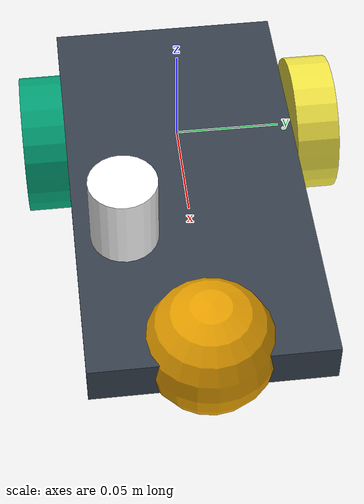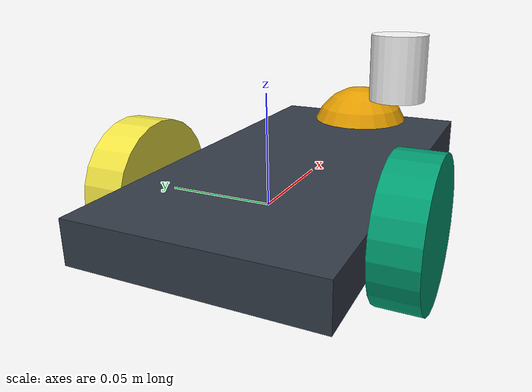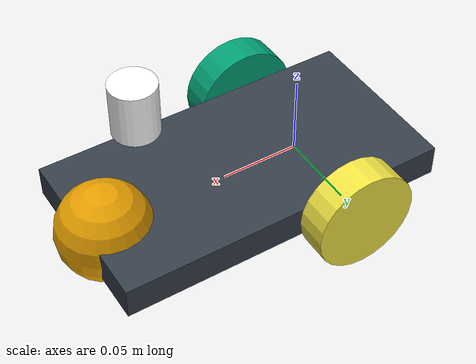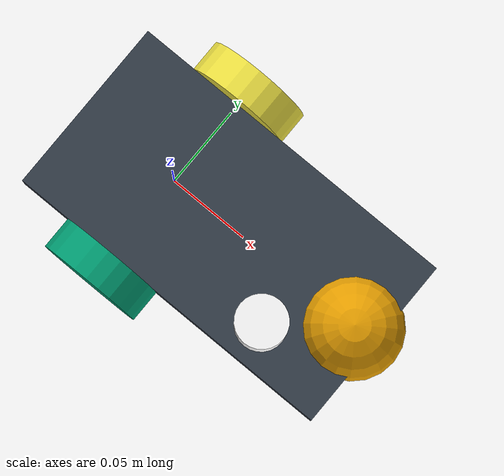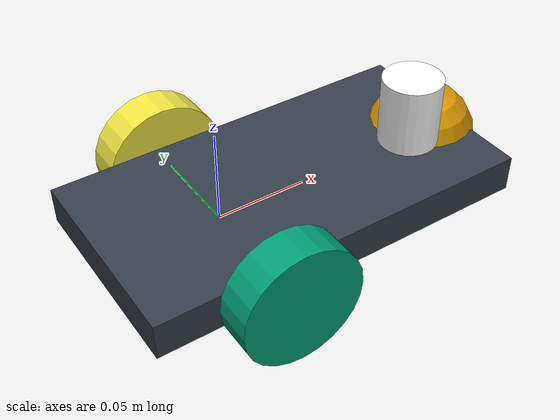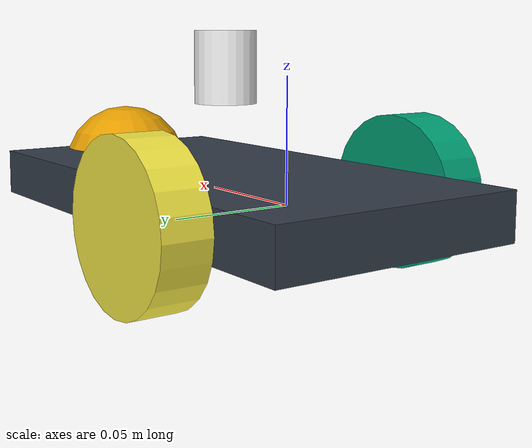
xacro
<?xml version="1.0" ?>
<robot name="m2wr" xmlns:xacro="http://www.ros.org/wiki/xacro">

  <xacro:include filename="$(find diff_drive_robot)/urdf/materials.xacro" />
  <xacro:include filename="$(find diff_drive_robot)/urdf/macros.xacro" />

  <link name="base_link">
    <!-- pose and inertial -->
    <pose>0 0 0.1 0 0 0</pose>
    <inertial>
      <mass value="5"/>
      <origin rpy="0 0 0" xyz="0 0 0.1"/>
      <inertia ixx="0.0395416666667" ixy="0" ixz="0" iyy="0.106208333333" iyz="0" izz="0.106208333333"/>
    </inertial>
    <!-- body -->
    <collision name="collision_chassis">
      <origin rpy="0 0 0" xyz="0.04 0 0"/>
      <geometry>
        <box size="0.21 0.11 0.02"/>
      </geometry>
    </collision>
    <visual>
      <origin rpy="0 0 0" xyz="0.04 0 0"/>
      <geometry>
       <box size="0.21 0.11 0.02"/>
      </geometry>
      <material name="blue"/>
    </visual>
    <!-- caster front -->
    <collision name="caster_front_collision">
      <origin rpy=" 0 0 0" xyz="0.13 0 0"/>
      <geometry>
        <sphere radius="0.03"/>
      </geometry>
      <surface>
        <friction>
          <ode>
            <mu>0</mu>
            <mu2>0</mu2>
            <slip1>1.0</slip1>
            <slip2>1.0</slip2>
          </ode>
        </friction>
      </surface>
    </collision>
    <visual name="caster_front_visual">
      <origin rpy=" 0 0 0" xyz="0.13 0 0"/>
      <geometry>
        <sphere radius="0.03"/>
      </geometry>
    </visual>
  </link>

  <!-- Laser sensor -->
  <link name="base_laser">
        <inertial>
            <origin xyz="0 0 0" rpy="0 0 0" />
            <mass value="1" />
             <inertia ixx="0.02" ixy="0" ixz="0" iyy="0.02" iyz="0" izz="0.02"/>
        </inertial>

        <visual>
            <origin xyz="0 0 0" rpy="0 0 0" />
            <geometry>
            <cylinder radius="0.015" length="0.035"/>
            </geometry>
            <material name="white" />
        </visual>

        <collision>
            <origin xyz="0 0 0" rpy="0 0 0"/>
            <geometry>
            <cylinder radius="0.015" length="0.035"/>
            </geometry>
        </collision>
 </link>

  <joint name="joint_sensor_laser" type="fixed">
      <origin xyz="0.09 -0.033 0.05" rpy="0 0 0"/>
      <parent link="base_link"/>
      <child link="base_laser"/>
  </joint>

  <xacro:link_wheel name="link_right_wheel" />
  <xacro:joint_wheel name="joint_right_wheel" child="link_right_wheel" origin_xyz="-0.00 -0.065 0" />

  <xacro:link_wheel name="link_left_wheel" />
  <xacro:joint_wheel name="joint_left_wheel" child="link_left_wheel" origin_xyz="-0.00 0.065 0" />
</robot>

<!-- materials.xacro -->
<robot>
    <material name="black">
        <color rgba="0.0 0.0 0.0 1.0"/>
    </material>
    <material name="blue">
        <color rgba="0.203125 0.23828125 0.28515625 1.0"/>
    </material>
    <material name="green">
        <color rgba="0.0 0.8 0.0 1.0"/>
    </material>
    <material name="grey">
        <color rgba="0.2 0.2 0.2 1.0"/>
    </material>
    <material name="orange">
        <color rgba="1.0 0.423529411765 0.0392156862745 1.0"/>
    </material>
    <material name="brown">
        <color rgba="0.870588235294 0.811764705882 0.764705882353 1.0"/>
    </material>
    <material name="red">
        <color rgba="0.80078125 0.12890625 0.1328125 1.0"/>
    </material>
    <material name="white">
        <color rgba="1.0 1.0 1.0 1.0"/>
    </material>
</robot>

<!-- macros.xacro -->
<robot xmlns:xacro="http://www.ros.org/wiki/xacro">
    <xacro:macro name="link_wheel" params="name">
        <link name="${name}">
            <inertial>
              <mass value="0.2"/>
              <origin rpy="0 1.5707 1.5707" xyz="0 0 0"/>
              <inertia ixx="0.000526666666667" ixy="0" ixz="0" iyy="0.000526666666667" iyz="0" izz="0.001"/>
            </inertial>
            <collision>
              <origin rpy="0 1.5707 1.5707" xyz="0 0 0"/>
              <geometry>
                <cylinder length="0.02" radius="0.0325"/>
              </geometry>
            </collision>
            <visual>
              <origin rpy="0 1.5707 1.5707" xyz="0 0 0"/>
              <geometry>
                <cylinder length="0.02" radius="0.0325"/>
              </geometry>
            </visual>
        </link>
    </xacro:macro>

    <xacro:macro name="joint_wheel" params="name child origin_xyz">
      <joint name="${name}" type="continuous">
        <origin rpy="0 0 0" xyz="${origin_xyz}"/>
        <child link="${child}"/>
        <parent link="base_link"/>
        <axis rpy="0 0 0" xyz="0 1 0"/>
        <limit effort="10000" velocity="1000"/>
        <joint_properties damping="1.0" friction="1.0"/>
      </joint>
    </xacro:macro>

</robot>
